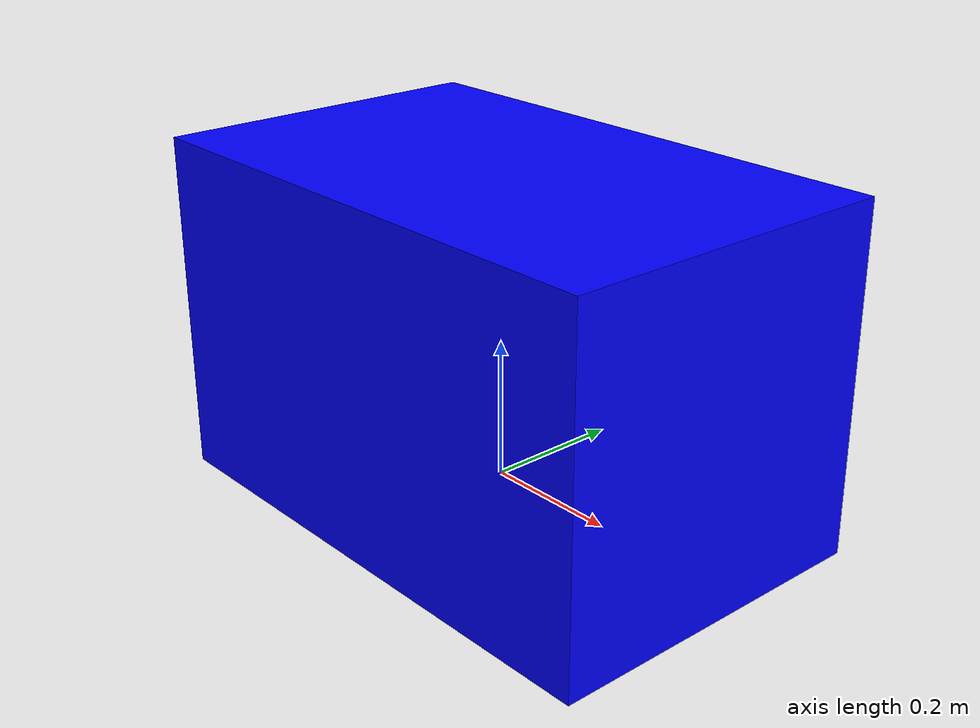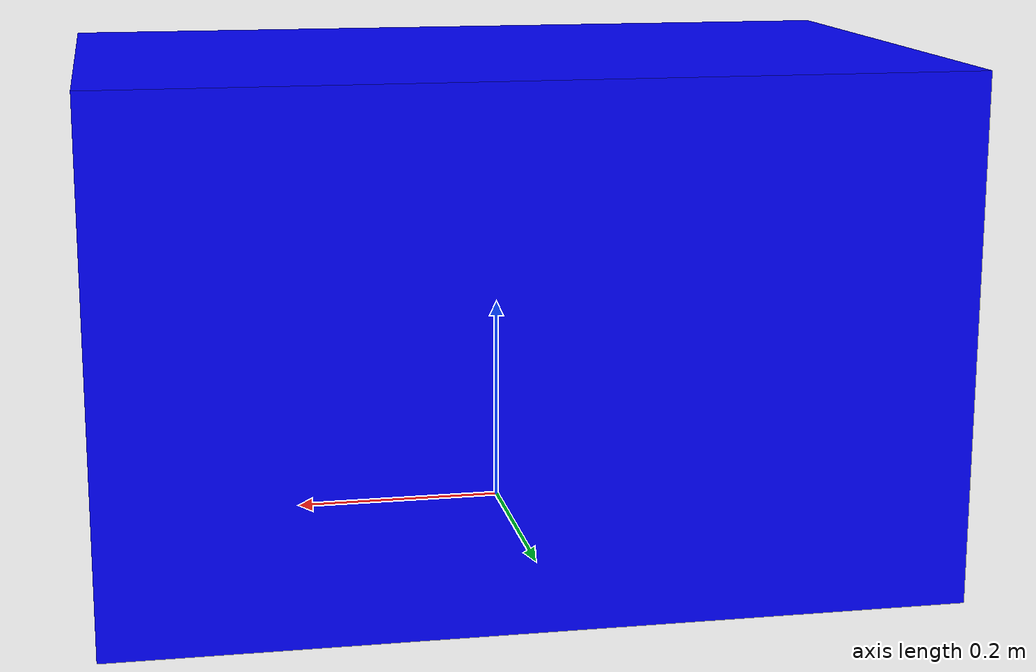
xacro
<?xml version="1.0"?>
<robot name="simple_cube" xmlns:xacro="http://www.ros.org/wiki/xacro">

  <!-- Base link as a simple cube, positioned above the plane -->
  <link name="base_link">
    <visual>
      <origin xyz="0 0 0.2" rpy="0 0 0"/>
      <geometry>
        <box size="0.8 0.5 0.5"/>
      </geometry>
      <material name="blue">
        <color rgba="0 0 1 1"/>
      </material>
    </visual>
    <collision>
      <origin xyz="0 0 0.2" rpy="0 0 0"/>
      <geometry>
        <box size="0.8 0.5 0.5"/>
      </geometry>
    </collision>
    <!-- No inertia specified to avoid KDL issues -->
  </link>

</robot>
